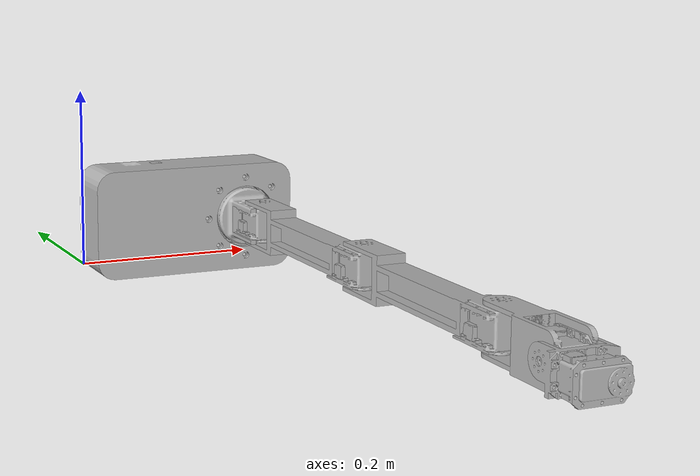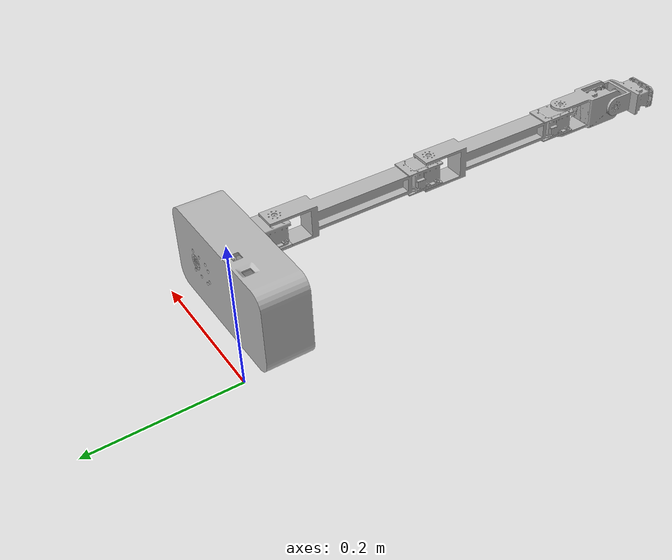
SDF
<sdf version='1.7'>
  <model name='robot_arm'>
    <link name='base_link'>
      <inertial>
        <pose>0.10153 0.059553 0.056505 0 -0 0</pose>
        <mass>0.43622</mass>
        <inertia>
          <ixx>0.00082285</ixx>
          <ixy>2.913e-06</ixy>
          <ixz>-4.0176e-08</ixz>
          <iyy>0.00064528</iyy>
          <iyz>-1.0207e-06</iyz>
          <izz>0.0013806</izz>
        </inertia>
      </inertial>
      <collision name='base_link_collision'>
        <pose>0 0 0 0 -0 0</pose>
        <geometry>
          <mesh>
            <scale>1 1 1</scale>
            <uri>model://robot_arm/meshes/base_link.STL</uri>
          </mesh>
        </geometry>
      </collision>
      <visual name='base_link_visual'>
        <pose>0 0 0 0 -0 0</pose>
        <geometry>
          <mesh>
            <scale>1 1 1</scale>
            <uri>model://robot_arm/meshes/base_link.STL</uri>
          </mesh>
        </geometry>
      </visual>
    </link>
    <joint name='first_yaw' type='revolute'>
      <pose relative_to='base_link'>0.16463 -0.043952 0.059652 1.5708 -0 0</pose>
      <parent>base_link</parent>
      <child>first_Link</child>
      <axis>
        <xyz>0 0 1</xyz>
        <limit>
          <lower>0</lower>
          <upper>0</upper>
          <effort>0</effort>
          <velocity>0</velocity>
        </limit>
        <dynamics>
          <spring_reference>0</spring_reference>
          <spring_stiffness>0</spring_stiffness>
        </dynamics>
      </axis>
    </joint>
    <link name='first_Link'>
      <pose relative_to='first_yaw'>0 0 0 0 -0 0</pose>
      <inertial>
        <pose>-0.001688 5.3e-05 0.037491 0 -0 0</pose>
        <mass>0.27473</mass>
        <inertia>
          <ixx>0.00013933</ixx>
          <ixy>1.4213e-09</ixy>
          <ixz>1.1191e-07</ixz>
          <iyy>0.00014014</iyy>
          <iyz>-1.8275e-07</iyz>
          <izz>0.00022755</izz>
        </inertia>
      </inertial>
      <collision name='first_Link_collision'>
        <pose>0 0 0 0 -0 0</pose>
        <geometry>
          <mesh>
            <scale>1 1 1</scale>
            <uri>model://robot_arm/meshes/first_Link.STL</uri>
          </mesh>
        </geometry>
      </collision>
      <visual name='first_Link_visual'>
        <pose>0 0 0 0 -0 0</pose>
        <geometry>
          <mesh>
            <scale>1 1 1</scale>
            <uri>model://robot_arm/meshes/first_Link.STL</uri>
          </mesh>
        </geometry>
      </visual>
    </link>
    <joint name='second_pitch' type='revolute'>
      <pose relative_to='first_Link'>1.2e-05 0.000725 0.095227 0 -0 0</pose>
      <parent>first_Link</parent>
      <child>second_Link</child>
      <axis>
        <xyz>0 -1 0</xyz>
        <limit>
          <lower>0</lower>
          <upper>0</upper>
          <effort>0</effort>
          <velocity>0</velocity>
        </limit>
        <dynamics>
          <spring_reference>0</spring_reference>
          <spring_stiffness>0</spring_stiffness>
        </dynamics>
      </axis>
    </joint>
    <link name='second_Link'>
      <pose relative_to='second_pitch'>0 0 0 0 -0 0</pose>
      <inertial>
        <pose>-1.3e-05 2.4e-05 0.14715 0 -0 0</pose>
        <mass>0.13965</mass>
        <inertia>
          <ixx>0.00022774</ixx>
          <ixy>2.6131e-12</ixy>
          <ixz>1.4187e-09</ixz>
          <iyy>0.00022298</iyy>
          <iyz>-1.8276e-07</iyz>
          <izz>2.3425e-05</izz>
        </inertia>
      </inertial>
      <collision name='second_Link_collision'>
        <pose>0 0 0 0 -0 0</pose>
        <geometry>
          <mesh>
            <scale>1 1 1</scale>
            <uri>model://robot_arm/meshes/second_Link.STL</uri>
          </mesh>
        </geometry>
      </collision>
      <visual name='second_Link_visual'>
        <pose>0 0 0 0 -0 0</pose>
        <geometry>
          <mesh>
            <scale>1 1 1</scale>
            <uri>model://robot_arm/meshes/second_Link.STL</uri>
          </mesh>
        </geometry>
      </visual>
    </link>
    <joint name='third_pitch' type='revolute'>
      <pose relative_to='second_Link'>0 0.000475 0.244 0 -0 0</pose>
      <parent>second_Link</parent>
      <child>third_Link</child>
      <axis>
        <xyz>0 -1 0</xyz>
        <limit>
          <lower>0</lower>
          <upper>0</upper>
          <effort>0</effort>
          <velocity>0</velocity>
        </limit>
        <dynamics>
          <spring_reference>0</spring_reference>
          <spring_stiffness>0</spring_stiffness>
        </dynamics>
      </axis>
    </joint>
    <link name='third_Link'>
      <pose relative_to='third_pitch'>0 0 0 0 -0 0</pose>
      <inertial>
        <pose>-1.3e-05 2.4e-05 0.14715 0 -0 0</pose>
        <mass>0.13965</mass>
        <inertia>
          <ixx>0.00022774</ixx>
          <ixy>2.6131e-12</ixy>
          <ixz>1.4187e-09</ixz>
          <iyy>0.00022298</iyy>
          <iyz>-1.8276e-07</iyz>
          <izz>2.3425e-05</izz>
        </inertia>
      </inertial>
      <collision name='third_Link_collision'>
        <pose>0 0 0 0 -0 0</pose>
        <geometry>
          <mesh>
            <scale>1 1 1</scale>
            <uri>model://robot_arm/meshes/third_Link.STL</uri>
          </mesh>
        </geometry>
      </collision>
      <visual name='third_Link_visual'>
        <pose>0 0 0 0 -0 0</pose>
        <geometry>
          <mesh>
            <scale>1 1 1</scale>
            <uri>model://robot_arm/meshes/third_Link.STL</uri>
          </mesh>
        </geometry>
      </visual>
    </link>
    <joint name='fourth_pitch' type='revolute'>
      <pose relative_to='third_Link'>0 0 0.244 0 -0 0</pose>
      <parent>third_Link</parent>
      <child>foutrh_Link</child>
      <axis>
        <xyz>0 -1 0</xyz>
        <limit>
          <lower>0</lower>
          <upper>0</upper>
          <effort>0</effort>
          <velocity>0</velocity>
        </limit>
        <dynamics>
          <spring_reference>0</spring_reference>
          <spring_stiffness>0</spring_stiffness>
        </dynamics>
      </axis>
    </joint>
    <link name='foutrh_Link'>
      <pose relative_to='fourth_pitch'>0 0 0 0 -0 0</pose>
      <inertial>
        <pose>-0.000172 0.000474 0.065219 0 -0 0</pose>
        <mass>0.090943</mass>
        <inertia>
          <ixx>5.4292e-05</ixx>
          <ixy>-2.6131e-12</ixy>
          <ixz>1.8276e-07</ixz>
          <iyy>4.9911e-05</iyy>
          <iyz>1.4187e-09</iyz>
          <izz>2.972e-05</izz>
        </inertia>
      </inertial>
      <collision name='foutrh_Link_collision'>
        <pose>0 0 0 0 -0 0</pose>
        <geometry>
          <mesh>
            <scale>1 1 1</scale>
            <uri>model://robot_arm/meshes/foutrh_Link.STL</uri>
          </mesh>
        </geometry>
      </collision>
      <visual name='foutrh_Link_visual'>
        <pose>0 0 0 0 -0 0</pose>
        <geometry>
          <mesh>
            <scale>1 1 1</scale>
            <uri>model://robot_arm/meshes/foutrh_Link.STL</uri>
          </mesh>
        </geometry>
      </visual>
    </link>
    <joint name='fifth_pitch' type='revolute'>
      <pose relative_to='foutrh_Link'>-0.000262 0.000487 0.0936 0 -0 0</pose>
      <parent>foutrh_Link</parent>
      <child>fifth_Link</child>
      <axis>
        <xyz>1 0 0</xyz>
        <limit>
          <lower>0</lower>
          <upper>0</upper>
          <effort>0</effort>
          <velocity>0</velocity>
        </limit>
        <dynamics>
          <spring_reference>0</spring_reference>
          <spring_stiffness>0</spring_stiffness>
        </dynamics>
      </axis>
    </joint>
    <link name='fifth_Link'>
      <pose relative_to='fifth_pitch'>0 0 0 0 -0 0</pose>
      <inertial>
        <pose>9e-05 -1.3e-05 -0.028381 0 -0 0</pose>
        <mass>0.090943</mass>
        <inertia>
          <ixx>5.4292e-05</ixx>
          <ixy>-2.6131e-12</ixy>
          <ixz>1.8276e-07</ixz>
          <iyy>4.9911e-05</iyy>
          <iyz>1.4187e-09</iyz>
          <izz>2.972e-05</izz>
        </inertia>
      </inertial>
      <collision name='fifth_Link_collision'>
        <pose>0 0 0 0 -0 0</pose>
        <geometry>
          <mesh>
            <scale>1 1 1</scale>
            <uri>model://robot_arm/meshes/fifth_Link.STL</uri>
          </mesh>
        </geometry>
      </collision>
      <visual name='fifth_Link_visual'>
        <pose>0 0 0 0 -0 0</pose>
        <geometry>
          <mesh>
            <scale>1 1 1</scale>
            <uri>model://robot_arm/meshes/fifth_Link.STL</uri>
          </mesh>
        </geometry>
      </visual>
    </link>
    <joint name='sixth_roll' type='revolute'>
      <pose relative_to='fifth_Link'>-0.000475 -1.2e-05 0.049873 0 -0 0</pose>
      <parent>fifth_Link</parent>
      <child>sixth_Link</child>
      <axis>
        <xyz>0 0 -1</xyz>
        <limit>
          <lower>0</lower>
          <upper>0</upper>
          <effort>0</effort>
          <velocity>0</velocity>
        </limit>
        <dynamics>
          <spring_reference>0</spring_reference>
          <spring_stiffness>0</spring_stiffness>
        </dynamics>
      </axis>
    </joint>
    <link name='sixth_Link'>
      <pose relative_to='sixth_roll'>0 0 0 0 -0 0</pose>
      <inertial>
        <pose>-0.008434 -1e-06 -0.008997 0 -0 0</pose>
        <mass>0.063937</mass>
        <inertia>
          <ixx>1.2986e-05</ixx>
          <ixy>1.4187e-09</ixy>
          <ixz>2.8117e-07</ixz>
          <iyy>2.4205e-05</iyy>
          <iyz>2.6322e-12</iyz>
          <izz>2.0655e-05</izz>
        </inertia>
      </inertial>
      <collision name='sixth_Link_collision'>
        <pose>0 0 0 0 -0 0</pose>
        <geometry>
          <mesh>
            <scale>1 1 1</scale>
            <uri>model://robot_arm/meshes/sixth_Link.STL</uri>
          </mesh>
        </geometry>
      </collision>
      <visual name='sixth_Link_visual'>
        <pose>0 0 0 0 -0 0</pose>
        <geometry>
          <mesh>
            <scale>1 1 1</scale>
            <uri>model://robot_arm/meshes/sixth_Link.STL</uri>
          </mesh>
        </geometry>
      </visual>
    </link>
  </model>
</sdf>
